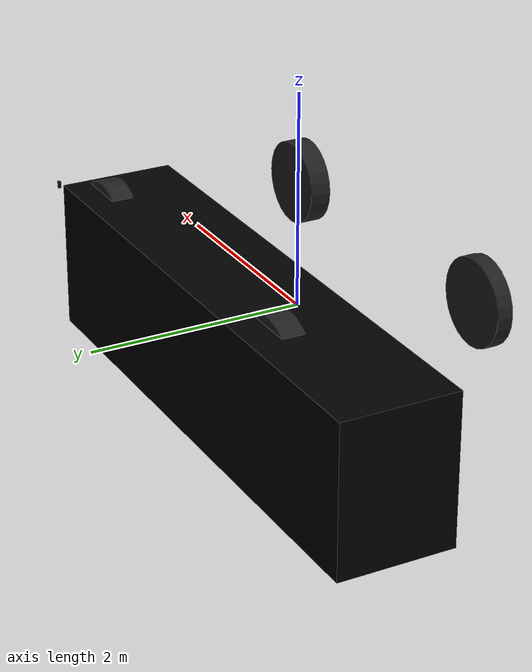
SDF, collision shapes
<?xml version='1.0'?>
<sdf version='1.6'>
  <model name='mybot'>
    <link name='footprint'>
      <pose frame=''>-0.709516 0.913375 -0.423314 0 -0 0</pose>
      <inertial>
        <pose frame=''>0.077451 0 0.501471 0 -0 0</pose>
        <mass>2.34501</mass>
        <inertia>
          <ixx>0.00101996</ixx>
          <ixy>0</ixy>
          <ixz>0</ixz>
          <iyy>0.00110135</iyy>
          <iyz>0</iyz>
          <izz>0.000324962</izz>
        </inertia>
      </inertial>
      <velocity_decay/>
      <gravity>1</gravity>
      <velocity_decay/>
      <sensor name='camera1' type='camera'>
        <update_rate>30</update_rate>
        <camera name='head'>
          <horizontal_fov>1.39626</horizontal_fov>
          <image>
            <width>800</width>
            <height>800</height>
            <format>R8G8B8</format>
          </image>
          <clip>
            <near>0.02</near>
            <far>300</far>
          </clip>
        </camera>
        <plugin name='camera_controller' filename='libgazebo_ros_camera.so'>
          <alwaysOn>1</alwaysOn>
          <updateRate>0.0</updateRate>
          <cameraName>mybot/camera1</cameraName>
          <imageTopicName>image_raw</imageTopicName>
          <cameraInfoTopicName>camera_info</cameraInfoTopicName>
          <frameName>camera_link</frameName>
          <hackBaseline>0.07</hackBaseline>
          <distortionK1>0.0</distortionK1>
          <distortionK2>0.0</distortionK2>
          <distortionK3>0.0</distortionK3>
          <distortionT1>0.0</distortionT1>
          <distortionT2>0.0</distortionT2>
          <robotNamespace>/</robotNamespace>
        </plugin>
        <pose frame=''>3.95 0 0.575 0 -0 0</pose>
      </sensor>
      <self_collide>0</self_collide>
      <enable_wind>0</enable_wind>
      <kinematic>0</kinematic>
      <visual name='footprint_fixed_joint_lump__visual_visual'>
        <pose frame=''>-0.1 0 0.5 0 -0 1.5708</pose>
        <geometry>
          <mesh>
            <scale>1 1 1</scale>
            <uri>/home/kpit/.gazebo/models/car_volvo/meshes/volvo.dae</uri>
          </mesh>
        </geometry>
        <transparency>0</transparency>
        <cast_shadows>1</cast_shadows>
        <material>
          <shader type='vertex'>
            <normal_map>__default__</normal_map>
          </shader>
          <script>
            <name>ModelPreview_1::footprint::footprint_fixed_joint_lump__visual_visual_MATERIAL_</name>
          </script>
          <ambient>0 0 0 1</ambient>
          <diffuse>0 0 0 1</diffuse>
          <specular>0 0 0 1</specular>
          <emissive>0 0 0 1</emissive>
        </material>
      </visual>
      <visual name='footprint_fixed_joint_lump__camera_visual_1'>
        <pose frame=''>3.95 0 0.575 0 -0 0</pose>
        <geometry>
          <box>
            <size>0.032244 0.024964 0.067795</size>
          </box>
        </geometry>
        <material>
          <script>
            <name>Gazebo/Grey</name>
            <uri>file://media/materials/scripts/gazebo.material</uri>
          </script>
          <shader type='vertex'>
            <normal_map>__default__</normal_map>
          </shader>
          <ambient>0.3 0.3 0.3 1</ambient>
          <diffuse>0.7 0.7 0.7 1</diffuse>
          <specular>0.01 0.01 0.01 1</specular>
          <emissive>0 0 0 1</emissive>
        </material>
        <transparency>0</transparency>
        <cast_shadows>1</cast_shadows>
      </visual>
      <collision name='footprint_fixed_joint_lump__chassis_collision'>
        <laser_retro>0</laser_retro>
        <max_contacts>10</max_contacts>
        <pose frame=''>0 0 0.5 0 -0 0</pose>
        <geometry>
          <box>
            <size>5.06796 1.05781 1.37231</size>
          </box>
        </geometry>
        <surface>
          <friction>
            <ode>
              <mu>1</mu>
              <mu2>1</mu2>
              <fdir1>0 0 0</fdir1>
              <slip1>0</slip1>
              <slip2>0</slip2>
            </ode>
            <torsional>
              <coefficient>1</coefficient>
              <patch_radius>0</patch_radius>
              <surface_radius>0</surface_radius>
              <use_patch_radius>1</use_patch_radius>
              <ode>
                <slip>0</slip>
              </ode>
            </torsional>
          </friction>
          <bounce>
            <restitution_coefficient>0</restitution_coefficient>
            <threshold>1e+06</threshold>
          </bounce>
          <contact>
            <collide_without_contact>0</collide_without_contact>
            <collide_without_contact_bitmask>1</collide_without_contact_bitmask>
            <collide_bitmask>1</collide_bitmask>
            <ode>
              <soft_cfm>0</soft_cfm>
              <soft_erp>0.2</soft_erp>
              <kp>1e+13</kp>
              <kd>1</kd>
              <max_vel>0.01</max_vel>
              <min_depth>0</min_depth>
            </ode>
            <bullet>
              <split_impulse>1</split_impulse>
              <split_impulse_penetration_threshold>-0.01</split_impulse_penetration_threshold>
              <soft_cfm>0</soft_cfm>
              <soft_erp>0.2</soft_erp>
              <kp>1e+13</kp>
              <kd>1</kd>
            </bullet>
          </contact>
        </surface>
      </collision>
      <collision name='footprint_fixed_joint_lump__camera_collision_1'>
        <laser_retro>0</laser_retro>
        <max_contacts>10</max_contacts>
        <pose frame=''>3.95 0 0.575 0 -0 0</pose>
        <geometry>
          <box>
            <size>0.032244 0.024964 0.067795</size>
          </box>
        </geometry>
        <surface>
          <friction>
            <ode>
              <mu>1</mu>
              <mu2>1</mu2>
              <fdir1>0 0 0</fdir1>
              <slip1>0</slip1>
              <slip2>0</slip2>
            </ode>
            <torsional>
              <coefficient>1</coefficient>
              <patch_radius>0</patch_radius>
              <surface_radius>0</surface_radius>
              <use_patch_radius>1</use_patch_radius>
              <ode>
                <slip>0</slip>
              </ode>
            </torsional>
          </friction>
          <bounce>
            <restitution_coefficient>0</restitution_coefficient>
            <threshold>1e+06</threshold>
          </bounce>
          <contact>
            <collide_without_contact>0</collide_without_contact>
            <collide_without_contact_bitmask>1</collide_without_contact_bitmask>
            <collide_bitmask>1</collide_bitmask>
            <ode>
              <soft_cfm>0</soft_cfm>
              <soft_erp>0.2</soft_erp>
              <kp>1e+13</kp>
              <kd>1</kd>
              <max_vel>0.01</max_vel>
              <min_depth>0</min_depth>
            </ode>
            <bullet>
              <split_impulse>1</split_impulse>
              <split_impulse_penetration_threshold>-0.01</split_impulse_penetration_threshold>
              <soft_cfm>0</soft_cfm>
              <soft_erp>0.2</soft_erp>
              <kp>1e+13</kp>
              <kd>1</kd>
            </bullet>
          </contact>
        </surface>
      </collision>
    </link>
    <link name='leftb_wheel'>
      <pose frame=''>-1.60645 1.06852 0.396273 0 -0 0</pose>
      <inertial>
        <pose frame=''>0 0 0 1.57079 1.57079 3.14159</pose>
        <mass>85.3674</mass>
        <inertia>
          <ixx>4.76482</ixx>
          <ixy>0</ixy>
          <ixz>0</ixz>
          <iyy>4.76482</iyy>
          <iyz>0</iyz>
          <izz>8.93646</izz>
        </inertia>
      </inertial>
      <gravity>1</gravity>
      <velocity_decay/>
      <self_collide>0</self_collide>
      <enable_wind>0</enable_wind>
      <kinematic>0</kinematic>
      <visual name='leftb_wheel_visual'>
        <pose frame=''>0 0 0 3.14159 1.57079 -1.57079</pose>
        <geometry>
          <cylinder>
            <length>0.204185</length>
            <radius>0.457564</radius>
          </cylinder>
        </geometry>
        <material>
          <script>
            <name>Gazebo/Black</name>
            <uri>file://media/materials/scripts/gazebo.material</uri>
          </script>
        </material>
        <transparency>0</transparency>
        <cast_shadows>1</cast_shadows>
      </visual>
      <collision name='leftb_wheel_collision'>
        <laser_retro>0</laser_retro>
        <max_contacts>10</max_contacts>
        <pose frame=''>0 0 0 3.14159 1.57079 -1.57079</pose>
        <geometry>
          <cylinder>
            <radius>0.457564</radius>
            <length>0.204185</length>
          </cylinder>
        </geometry>
        <surface>
          <friction>
            <ode>
              <mu>100000</mu>
              <mu2>100000</mu2>
              <fdir1>1 0 0</fdir1>
              <slip1>0</slip1>
              <slip2>0</slip2>
            </ode>
            <torsional>
              <coefficient>1</coefficient>
              <patch_radius>0</patch_radius>
              <surface_radius>0</surface_radius>
              <use_patch_radius>1</use_patch_radius>
              <ode>
                <slip>0</slip>
              </ode>
            </torsional>
          </friction>
          <bounce>
            <restitution_coefficient>0</restitution_coefficient>
            <threshold>1e+06</threshold>
          </bounce>
          <contact>
            <collide_without_contact>0</collide_without_contact>
            <collide_without_contact_bitmask>1</collide_without_contact_bitmask>
            <collide_bitmask>1</collide_bitmask>
            <ode>
              <soft_cfm>0</soft_cfm>
              <soft_erp>0.2</soft_erp>
              <kp>1e+07</kp>
              <kd>1</kd>
              <max_vel>0.01</max_vel>
              <min_depth>0</min_depth>
            </ode>
            <bullet>
              <split_impulse>1</split_impulse>
              <split_impulse_penetration_threshold>-0.01</split_impulse_penetration_threshold>
              <soft_cfm>0</soft_cfm>
              <soft_erp>0.2</soft_erp>
              <kp>1e+07</kp>
              <kd>1</kd>
            </bullet>
          </contact>
        </surface>
      </collision>
    </link>
    <link name='leftf_wheel'>
      <pose frame=''>1.47172 -0.834648 0.5 0 -0 0</pose>
      <inertial>
        <pose frame=''>0 0 0 1.57079 1.57079 3.14159</pose>
        <mass>6.3244</mass>
        <inertia>
          <ixx>0.271073</ixx>
          <ixy>0</ixy>
          <ixz>0</ixz>
          <iyy>0.271073</iyy>
          <iyz>0</iyz>
          <izz>0.499984</izz>
        </inertia>
      </inertial>
      <gravity>1</gravity>
      <velocity_decay/>
      <self_collide>0</self_collide>
      <enable_wind>0</enable_wind>
      <kinematic>0</kinematic>
      <visual name='leftf_wheel_visual'>
        <pose frame=''>0 0 0 3.14159 1.57079 -1.57079</pose>
        <geometry>
          <cylinder>
            <length>0.2</length>
            <radius>0.397634</radius>
          </cylinder>
        </geometry>
        <material>
          <script>
            <name>Gazebo/Black</name>
            <uri>file://media/materials/scripts/gazebo.material</uri>
          </script>
        </material>
        <transparency>0</transparency>
        <cast_shadows>1</cast_shadows>
      </visual>
      <collision name='leftf_wheel_collision'>
        <laser_retro>0</laser_retro>
        <max_contacts>10</max_contacts>
        <pose frame=''>0 0 0 3.14159 1.57079 -1.57079</pose>
        <geometry>
          <cylinder>
            <radius>0.397634</radius>
            <length>0.2</length>
          </cylinder>
        </geometry>
        <surface>
          <friction>
            <ode>
              <mu>0</mu>
              <mu2>0</mu2>
              <fdir1>1 0 0</fdir1>
              <slip1>0</slip1>
              <slip2>0</slip2>
            </ode>
            <torsional>
              <coefficient>1</coefficient>
              <patch_radius>0</patch_radius>
              <surface_radius>0</surface_radius>
              <use_patch_radius>1</use_patch_radius>
              <ode>
                <slip>0</slip>
              </ode>
            </torsional>
          </friction>
          <bounce>
            <restitution_coefficient>0</restitution_coefficient>
            <threshold>1e+06</threshold>
          </bounce>
          <contact>
            <collide_without_contact>0</collide_without_contact>
            <collide_without_contact_bitmask>1</collide_without_contact_bitmask>
            <collide_bitmask>1</collide_bitmask>
            <ode>
              <soft_cfm>0</soft_cfm>
              <soft_erp>0.2</soft_erp>
              <kp>1e+07</kp>
              <kd>1</kd>
              <max_vel>0.01</max_vel>
              <min_depth>0</min_depth>
            </ode>
            <bullet>
              <split_impulse>1</split_impulse>
              <split_impulse_penetration_threshold>-0.01</split_impulse_penetration_threshold>
              <soft_cfm>0</soft_cfm>
              <soft_erp>0.2</soft_erp>
              <kp>1e+07</kp>
              <kd>1</kd>
            </bullet>
          </contact>
        </surface>
      </collision>
    </link>
    <link name='rightb_wheel'>
      <pose frame=''>-1.55203 -0.873724 0.5 0 -0 0</pose>
      <inertial>
        <pose frame=''>0 0 0 1.57079 1.57079 3.14159</pose>
        <mass>46.5965</mass>
        <inertia>
          <ixx>1.94338</ixx>
          <ixy>0</ixy>
          <ixz>0</ixz>
          <iyy>1.94338</iyy>
          <iyz>0</iyz>
          <izz>3.72163</izz>
        </inertia>
      </inertial>
      <gravity>1</gravity>
      <velocity_decay/>
      <self_collide>0</self_collide>
      <enable_wind>0</enable_wind>
      <kinematic>0</kinematic>
      <visual name='rightb_wheel_visual'>
        <pose frame=''>0 0 0 3.14159 1.57079 -1.57079</pose>
        <geometry>
          <cylinder>
            <length>0.145816</length>
            <radius>0.399673</radius>
          </cylinder>
        </geometry>
        <material>
          <script>
            <name>Gazebo/Black</name>
            <uri>file://media/materials/scripts/gazebo.material</uri>
          </script>
        </material>
        <transparency>0</transparency>
        <cast_shadows>1</cast_shadows>
      </visual>
      <collision name='rightb_wheel_collision'>
        <laser_retro>0</laser_retro>
        <max_contacts>10</max_contacts>
        <pose frame=''>0 0 0 3.14159 1.57079 -1.57079</pose>
        <geometry>
          <cylinder>
            <radius>0.399673</radius>
            <length>0.145816</length>
          </cylinder>
        </geometry>
        <surface>
          <friction>
            <ode>
              <mu>100000</mu>
              <mu2>100000</mu2>
              <fdir1>1 0 0</fdir1>
              <slip1>0</slip1>
              <slip2>0</slip2>
            </ode>
            <torsional>
              <coefficient>1</coefficient>
              <patch_radius>0</patch_radius>
              <surface_radius>0</surface_radius>
              <use_patch_radius>1</use_patch_radius>
              <ode>
                <slip>0</slip>
              </ode>
            </torsional>
          </friction>
          <bounce>
            <restitution_coefficient>0</restitution_coefficient>
            <threshold>1e+06</threshold>
          </bounce>
          <contact>
            <collide_without_contact>0</collide_without_contact>
            <collide_without_contact_bitmask>1</collide_without_contact_bitmask>
            <collide_bitmask>1</collide_bitmask>
            <ode>
              <soft_cfm>0</soft_cfm>
              <soft_erp>0.2</soft_erp>
              <kp>1e+07</kp>
              <kd>1</kd>
              <max_vel>0.01</max_vel>
              <min_depth>0</min_depth>
            </ode>
            <bullet>
              <split_impulse>1</split_impulse>
              <split_impulse_penetration_threshold>-0.01</split_impulse_penetration_threshold>
              <soft_cfm>0</soft_cfm>
              <soft_erp>0.2</soft_erp>
              <kp>1e+07</kp>
              <kd>1</kd>
            </bullet>
          </contact>
        </surface>
      </collision>
    </link>
    <link name='rightf_wheel'>
      <pose frame=''>1.50285 1.10282 0.464622 0 -0 0</pose>
      <inertial>
        <pose frame=''>0 0 0 1.57079 1.57079 3.14159</pose>
        <mass>5.99076</mass>
        <inertia>
          <ixx>0.244274</ixx>
          <ixy>0</ixy>
          <ixz>0</ixz>
          <iyy>0.244274</iyy>
          <iyz>0</iyz>
          <izz>0.448611</izz>
        </inertia>
      </inertial>
      <gravity>1</gravity>
      <velocity_decay/>
      <self_collide>0</self_collide>
      <enable_wind>0</enable_wind>
      <kinematic>0</kinematic>
      <visual name='rightf_wheel_visual'>
        <pose frame=''>0 0 0 3.14159 1.57079 -1.57079</pose>
        <geometry>
          <cylinder>
            <length>0.2</length>
            <radius>0.386998</radius>
          </cylinder>
        </geometry>
        <material>
          <script>
            <name>Gazebo/Black</name>
            <uri>file://media/materials/scripts/gazebo.material</uri>
          </script>
        </material>
        <transparency>0</transparency>
        <cast_shadows>1</cast_shadows>
      </visual>
      <collision name='rightf_wheel_collision'>
        <laser_retro>0</laser_retro>
        <max_contacts>10</max_contacts>
        <pose frame=''>0 0 0 3.14159 1.57079 -1.57079</pose>
        <geometry>
          <cylinder>
            <radius>0.386998</radius>
            <length>0.2</length>
          </cylinder>
        </geometry>
        <surface>
          <friction>
            <ode>
              <mu>0</mu>
              <mu2>0</mu2>
              <fdir1>1 0 0</fdir1>
              <slip1>0</slip1>
              <slip2>0</slip2>
            </ode>
            <torsional>
              <coefficient>1</coefficient>
              <patch_radius>0</patch_radius>
              <surface_radius>0</surface_radius>
              <use_patch_radius>1</use_patch_radius>
              <ode>
                <slip>0</slip>
              </ode>
            </torsional>
          </friction>
          <bounce>
            <restitution_coefficient>0</restitution_coefficient>
            <threshold>1e+06</threshold>
          </bounce>
          <contact>
            <collide_without_contact>0</collide_without_contact>
            <collide_without_contact_bitmask>1</collide_without_contact_bitmask>
            <collide_bitmask>1</collide_bitmask>
            <ode>
              <soft_cfm>0</soft_cfm>
              <soft_erp>0.2</soft_erp>
              <kp>1e+07</kp>
              <kd>1</kd>
              <max_vel>0.01</max_vel>
              <min_depth>0</min_depth>
            </ode>
            <bullet>
              <split_impulse>1</split_impulse>
              <split_impulse_penetration_threshold>-0.01</split_impulse_penetration_threshold>
              <soft_cfm>0</soft_cfm>
              <soft_erp>0.2</soft_erp>
              <kp>1e+07</kp>
              <kd>1</kd>
            </bullet>
          </contact>
        </surface>
      </collision>
    </link>
    <joint name='leftb_wheel_hinge' type='revolute'>
      <parent>footprint</parent>
      <child>leftb_wheel</child>
      <pose frame=''>0 0 0 0 -0 0</pose>
      <axis>
        <xyz>0 1 0</xyz>
        <use_parent_model_frame>1</use_parent_model_frame>
        <limit>
          <lower>-1e+16</lower>
          <upper>1e+16</upper>
          <effort>-1</effort>
          <velocity>-1</velocity>
        </limit>
        <dynamics>
          <spring_reference>0</spring_reference>
          <spring_stiffness>0</spring_stiffness>
          <damping>0</damping>
          <friction>0</friction>
        </dynamics>
      </axis>
      <physics>
        <ode>
          <limit>
            <cfm>0</cfm>
            <erp>0.2</erp>
          </limit>
          <suspension>
            <cfm>0</cfm>
            <erp>0.2</erp>
          </suspension>
        </ode>
      </physics>
    </joint>
    <joint name='leftf_wheel_hinge' type='revolute'>
      <parent>footprint</parent>
      <child>leftf_wheel</child>
      <pose frame=''>0 0 0 0 -0 0</pose>
      <axis>
        <xyz>0 1 0</xyz>
        <use_parent_model_frame>1</use_parent_model_frame>
        <limit>
          <lower>-1e+16</lower>
          <upper>1e+16</upper>
          <effort>-1</effort>
          <velocity>-1</velocity>
        </limit>
        <dynamics>
          <spring_reference>0</spring_reference>
          <spring_stiffness>0</spring_stiffness>
          <damping>0</damping>
          <friction>0</friction>
        </dynamics>
      </axis>
      <physics>
        <ode>
          <limit>
            <cfm>0</cfm>
            <erp>0.2</erp>
          </limit>
          <suspension>
            <cfm>0</cfm>
            <erp>0.2</erp>
          </suspension>
        </ode>
      </physics>
    </joint>
    <joint name='rightb_wheel_hinge' type='revolute'>
      <parent>footprint</parent>
      <child>rightb_wheel</child>
      <pose frame=''>0 0 0 0 -0 0</pose>
      <axis>
        <xyz>0 1 0</xyz>
        <use_parent_model_frame>1</use_parent_model_frame>
        <limit>
          <lower>-1e+16</lower>
          <upper>1e+16</upper>
          <effort>-1</effort>
          <velocity>-1</velocity>
        </limit>
        <dynamics>
          <spring_reference>0</spring_reference>
          <spring_stiffness>0</spring_stiffness>
          <damping>0</damping>
          <friction>0</friction>
        </dynamics>
      </axis>
      <physics>
        <ode>
          <limit>
            <cfm>0</cfm>
            <erp>0.2</erp>
          </limit>
          <suspension>
            <cfm>0</cfm>
            <erp>0.2</erp>
          </suspension>
        </ode>
      </physics>
    </joint>
    <joint name='rightf_wheel_hinge' type='revolute'>
      <parent>footprint</parent>
      <child>rightf_wheel</child>
      <pose frame=''>0 0 0 0 -0 0</pose>
      <axis>
        <xyz>0 1 0</xyz>
        <use_parent_model_frame>1</use_parent_model_frame>
        <limit>
          <lower>-1e+16</lower>
          <upper>1e+16</upper>
          <effort>-1</effort>
          <velocity>-1</velocity>
        </limit>
        <dynamics>
          <spring_reference>0</spring_reference>
          <spring_stiffness>0</spring_stiffness>
          <damping>0</damping>
          <friction>0</friction>
        </dynamics>
      </axis>
      <physics>
        <ode>
          <limit>
            <cfm>0</cfm>
            <erp>0.2</erp>
          </limit>
          <suspension>
            <cfm>0</cfm>
            <erp>0.2</erp>
          </suspension>
        </ode>
      </physics>
    </joint>
    <static>0</static>
    <allow_auto_disable>1</allow_auto_disable>
    <plugin name='differential_drive_controller' filename='libgazebo_ros_diff_drive.so'>
      <alwaysOn>1</alwaysOn>
      <updateRate>100</updateRate>
      <leftJoint>leftb_wheel_hinge</leftJoint>
      <rightJoint>rightb_wheel_hinge</rightJoint>
      <wheelSeparation>2.2</wheelSeparation>
      <wheelDiameter>1.0</wheelDiameter>
      <torque>20</torque>
      <commandTopic>turtle1/cmd_vel</commandTopic>
      <odometryTopic>mybot/odom_diffdrive</odometryTopic>
      <odometryFrame>odom</odometryFrame>
      <robotBaseFrame>footprint</robotBaseFrame>
      <robotNamespace>/</robotNamespace>
    </plugin>
    <plugin name='gazebo_ros_control' filename='libgazebo_ros_control.so'>
      <robotNamespace>/mybot</robotNamespace>
    </plugin>
    <plugin name='ground_truth' filename='libgazebo_ros_p3d.so'>
      <frameName>map</frameName>
      <topicName>mybot/odom</topicName>
      <updateRate>30.0</updateRate>
      <robotNamespace>/</robotNamespace>
      <bodyName>footprint</bodyName>
      <xyzOffset>0 0 0</xyzOffset>
      <rpyOffset>0 -0 0</rpyOffset>
    </plugin>
  </model>
</sdf>
